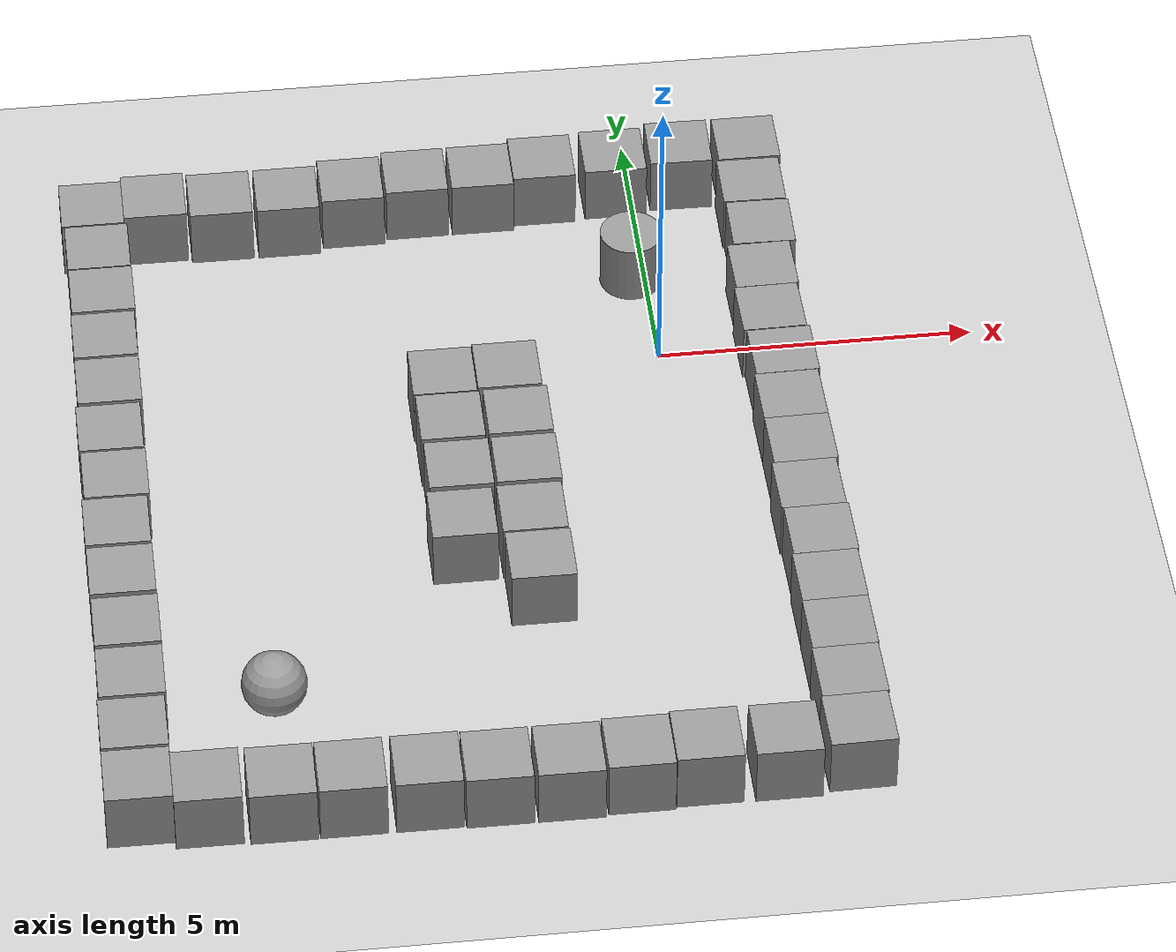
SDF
<sdf version="1.6">
 <world name="default">
  <light name="sun" type="directional">
   <pose>0 0 10 0 -0 0</pose>
   <diffuse>0.8 0.8 0.8 1</diffuse>
   <specular>0.2 0.2 0.2 1</specular>
   <attenuation>
    <range>1000</range>
    <constant>0.9</constant>
    <linear>0.01</linear>
    <quadratic>0.001</quadratic>
   </attenuation>
   <direction>-0.5 0.1 -0.9</direction>
  </light>
  <model name="ground_plane">
   <static>1</static>
   <link name="link">
    <collision name="collision">
     <geometry><plane><normal>0 0 1</normal><size>100 100</size></plane></geometry>
     <surface>
      <contact><collide_bitmask>65535</collide_bitmask></contact>
      <friction><ode><mu>100</mu><mu2>50</mu2></ode></friction>
     </surface>
    </collision>
    <visual name="visual">
     <cast_shadows>0</cast_shadows>
     <geometry><plane><normal>0 0 1</normal><size>100 100</size></plane></geometry>
     <material>
      <script><uri>file://media/materials/scripts/gazebo.material</uri><name>Gazebo/Grey</name></script>
     </material>
    </visual>
   </link>
  </model>
  <gravity>0 0 -9.8</gravity>
  <magnetic_field>6e-06 2.3e-05 -4.2e-05</magnetic_field>
  <atmosphere type="adiabatic"/>
  <physics name="default_physics" default="0" type="ode">
   <max_step_size>0.001</max_step_size>
   <real_time_factor>1</real_time_factor>
   <real_time_update_rate>1000</real_time_update_rate>
  </physics>
  <scene><ambient>0.4 0.4 0.4 1</ambient><background>0.7 0.7 0.7 1</background><shadows>1</shadows></scene>
  <audio><device>default</device></audio>
  <spherical_coordinates>
   <surface_model>EARTH_WGS84</surface_model>
   <latitude_deg>0</latitude_deg>
   <longitude_deg>0</longitude_deg>
   <elevation>0</elevation>
   <heading_deg>0</heading_deg>
  </spherical_coordinates>
  <model name="unit_box">
   <pose>-8.73209 0.394664 0.499995 0 -1e-05 -0.00012</pose>
   <link name="link">
    <inertial>
     <mass>1</mass>
     <inertia>
      <ixx>0.166667</ixx>
      <ixy>0</ixy>
      <ixz>0</ixz>
      <iyy>0.166667</iyy>
      <iyz>0</iyz>
      <izz>0.166667</izz>
     </inertia>
    </inertial>
    <collision name="collision"><geometry><box><size>1 1 1</size></box></geometry></collision>
    <visual name="visual">
     <geometry><box><size>1 1 1</size></box></geometry>
     <material>
      <script><name>Gazebo/Grey</name><uri>file://media/materials/scripts/gazebo.material</uri></script>
     </material>
    </visual>
   </link>
  </model>
  <model name="unit_box_0">
   <pose>-8.71122 1.44465 0.499995 1e-05 -0 0.000655</pose>
   <link name="link">
    <inertial>
     <mass>1</mass>
     <inertia>
      <ixx>0.166667</ixx>
      <ixy>0</ixy>
      <ixz>0</ixz>
      <iyy>0.166667</iyy>
      <iyz>0</iyz>
      <izz>0.166667</izz>
     </inertia>
    </inertial>
    <collision name="collision"><geometry><box><size>1 1 1</size></box></geometry></collision>
    <visual name="visual">
     <geometry><box><size>1 1 1</size></box></geometry>
     <material>
      <script><name>Gazebo/Grey</name><uri>file://media/materials/scripts/gazebo.material</uri></script>
     </material>
    </visual>
   </link>
  </model>
  <model name="unit_box_1">
   <pose>-8.73524 -0.65064 0.499995 0 1e-05 0</pose>
   <link name="link">
    <inertial>
     <mass>1</mass>
     <inertia>
      <ixx>0.166667</ixx>
      <ixy>0</ixy>
      <ixz>0</ixz>
      <iyy>0.166667</iyy>
      <iyz>0</iyz>
      <izz>0.166667</izz>
     </inertia>
    </inertial>
    <collision name="collision"><geometry><box><size>1 1 1</size></box></geometry></collision>
    <visual name="visual">
     <geometry><box><size>1 1 1</size></box></geometry>
     <material>
      <script><name>Gazebo/Grey</name><uri>file://media/materials/scripts/gazebo.material</uri></script>
     </material>
    </visual>
   </link>
  </model>
  <model name="unit_box_2">
   <pose>-2.46572 -2.02959 0.499995 -1e-05 0 0</pose>
   <link name="link">
    <inertial>
     <mass>1</mass>
     <inertia>
      <ixx>0.166667</ixx>
      <ixy>0</ixy>
      <ixz>0</ixz>
      <iyy>0.166667</iyy>
      <iyz>0</iyz>
      <izz>0.166667</izz>
     </inertia>
    </inertial>
    <collision name="collision"><geometry><box><size>1 1 1</size></box></geometry></collision>
    <visual name="visual">
     <geometry><box><size>1 1 1</size></box></geometry>
     <material>
      <script><name>Gazebo/Grey</name><uri>file://media/materials/scripts/gazebo.material</uri></script>
     </material>
    </visual>
   </link>
  </model>
  <model name="unit_box_3">
   <pose>-3.52074 -2.0453 0.499995 0 1e-05 0</pose>
   <link name="link">
    <inertial>
     <mass>1</mass>
     <inertia>
      <ixx>0.166667</ixx>
      <ixy>0</ixy>
      <ixz>0</ixz>
      <iyy>0.166667</iyy>
      <iyz>0</iyz>
      <izz>0.166667</izz>
     </inertia>
    </inertial>
    <collision name="collision"><geometry><box><size>1 1 1</size></box></geometry></collision>
    <visual name="visual">
     <geometry><box><size>1 1 1</size></box></geometry>
     <material>
      <script><name>Gazebo/Grey</name><uri>file://media/materials/scripts/gazebo.material</uri></script>
     </material>
    </visual>
   </link>
  </model>
  <model name="unit_box_4">
   <pose>-2.45367 -3.10243 0.499995 -1e-05 0 0</pose>
   <link name="link">
    <inertial>
     <mass>1</mass>
     <inertia>
      <ixx>0.166667</ixx>
      <ixy>0</ixy>
      <ixz>0</ixz>
      <iyy>0.166667</iyy>
      <iyz>0</iyz>
      <izz>0.166667</izz>
     </inertia>
    </inertial>
    <collision name="collision"><geometry><box><size>1 1 1</size></box></geometry></collision>
    <visual name="visual">
     <geometry><box><size>1 1 1</size></box></geometry>
     <material>
      <script><name>Gazebo/Grey</name><uri>file://media/materials/scripts/gazebo.material</uri></script>
     </material>
    </visual>
   </link>
  </model>
  <model name="unit_box_5">
   <pose>-8.77672 -1.71333 0.499995 -1e-05 0 0</pose>
   <link name="link">
    <inertial>
     <mass>1</mass>
     <inertia>
      <ixx>0.166667</ixx>
      <ixy>0</ixy>
      <ixz>0</ixz>
      <iyy>0.166667</iyy>
      <iyz>0</iyz>
      <izz>0.166667</izz>
     </inertia>
    </inertial>
    <collision name="collision"><geometry><box><size>1 1 1</size></box></geometry></collision>
    <visual name="visual">
     <geometry><box><size>1 1 1</size></box></geometry>
     <material>
      <script><name>Gazebo/Grey</name><uri>file://media/materials/scripts/gazebo.material</uri></script>
     </material>
    </visual>
   </link>
  </model>
  <model name="unit_box_6">
   <pose>-3.55502 -4.19778 0.499995 -1e-05 -0 -0</pose>
   <link name="link">
    <inertial>
     <mass>1</mass>
     <inertia>
      <ixx>0.166667</ixx>
      <ixy>0</ixy>
      <ixz>0</ixz>
      <iyy>0.166667</iyy>
      <iyz>0</iyz>
      <izz>0.166667</izz>
     </inertia>
    </inertial>
    <collision name="collision"><geometry><box><size>1 1 1</size></box></geometry></collision>
    <visual name="visual">
     <geometry><box><size>1 1 1</size></box></geometry>
     <material>
      <script><name>Gazebo/Grey</name><uri>file://media/materials/scripts/gazebo.material</uri></script>
     </material>
    </visual>
   </link>
  </model>
  <model name="unit_box_8">
   <pose>-2.46188 -5.20752 0.499995 1e-05 -0 0</pose>
   <link name="link">
    <inertial>
     <mass>1</mass>
     <inertia>
      <ixx>0.166667</ixx>
      <ixy>0</ixy>
      <ixz>0</ixz>
      <iyy>0.166667</iyy>
      <iyz>0</iyz>
      <izz>0.166667</izz>
     </inertia>
    </inertial>
    <collision name="collision"><geometry><box><size>1 1 1</size></box></geometry></collision>
    <visual name="visual">
     <geometry><box><size>1 1 1</size></box></geometry>
     <material>
      <script><name>Gazebo/Grey</name><uri>file://media/materials/scripts/gazebo.material</uri></script>
     </material>
    </visual>
   </link>
  </model>
  <model name="unit_box_9">
   <pose>-2.47968 -4.1786 0.499995 0 -1e-05 0</pose>
   <link name="link">
    <inertial>
     <mass>1</mass>
     <inertia>
      <ixx>0.166667</ixx>
      <ixy>0</ixy>
      <ixz>0</ixz>
      <iyy>0.166667</iyy>
      <iyz>0</iyz>
      <izz>0.166667</izz>
     </inertia>
    </inertial>
    <collision name="collision"><geometry><box><size>1 1 1</size></box></geometry></collision>
    <visual name="visual">
     <geometry><box><size>1 1 1</size></box></geometry>
     <material>
      <script><name>Gazebo/Grey</name><uri>file://media/materials/scripts/gazebo.material</uri></script>
     </material>
    </visual>
   </link>
  </model>
  <model name="unit_box_10">
   <pose>-3.49853 -3.11328 0.499995 0 -1e-05 0</pose>
   <link name="link">
    <inertial>
     <mass>1</mass>
     <inertia>
      <ixx>0.166667</ixx>
      <ixy>0</ixy>
      <ixz>0</ixz>
      <iyy>0.166667</iyy>
      <iyz>0</iyz>
      <izz>0.166667</izz>
     </inertia>
    </inertial>
    <collision name="collision"><geometry><box><size>1 1 1</size></box></geometry></collision>
    <visual name="visual">
     <geometry><box><size>1 1 1</size></box></geometry>
     <material>
      <script><name>Gazebo/Grey</name><uri>file://media/materials/scripts/gazebo.material</uri></script>
     </material>
    </visual>
   </link>
  </model>
  <model name="unit_box_13">
   <pose>-8.75933 -2.74937 0.499995 0 -1e-05 0</pose>
   <link name="link">
    <inertial>
     <mass>1</mass>
     <inertia>
      <ixx>0.166667</ixx>
      <ixy>0</ixy>
      <ixz>0</ixz>
      <iyy>0.166667</iyy>
      <iyz>0</iyz>
      <izz>0.166667</izz>
     </inertia>
    </inertial>
    <collision name="collision"><geometry><box><size>1 1 1</size></box></geometry></collision>
    <visual name="visual">
     <geometry><box><size>1 1 1</size></box></geometry>
     <material>
      <script><name>Gazebo/Grey</name><uri>file://media/materials/scripts/gazebo.material</uri></script>
     </material>
    </visual>
   </link>
  </model>
  <model name="unit_box_14">
   <pose>-8.79846 -3.78615 0.499995 1e-05 -0 0</pose>
   <link name="link">
    <inertial>
     <mass>1</mass>
     <inertia>
      <ixx>0.166667</ixx>
      <ixy>0</ixy>
      <ixz>0</ixz>
      <iyy>0.166667</iyy>
      <iyz>0</iyz>
      <izz>0.166667</izz>
     </inertia>
    </inertial>
    <collision name="collision"><geometry><box><size>1 1 1</size></box></geometry></collision>
    <visual name="visual">
     <geometry><box><size>1 1 1</size></box></geometry>
     <material>
      <script><name>Gazebo/Grey</name><uri>file://media/materials/scripts/gazebo.material</uri></script>
     </material>
    </visual>
   </link>
  </model>
  <model name="unit_box_15">
   <pose>-8.79377 -4.83924 0.499995 0 1e-05 0</pose>
   <link name="link">
    <inertial>
     <mass>1</mass>
     <inertia>
      <ixx>0.166667</ixx>
      <ixy>0</ixy>
      <ixz>0</ixz>
      <iyy>0.166667</iyy>
      <iyz>0</iyz>
      <izz>0.166667</izz>
     </inertia>
    </inertial>
    <collision name="collision"><geometry><box><size>1 1 1</size></box></geometry></collision>
    <visual name="visual">
     <geometry><box><size>1 1 1</size></box></geometry>
     <material>
      <script><name>Gazebo/Grey</name><uri>file://media/materials/scripts/gazebo.material</uri></script>
     </material>
    </visual>
   </link>
  </model>
  <model name="unit_box_16">
   <pose>-8.78593 -5.91969 0.499995 1e-05 -0 0</pose>
   <link name="link">
    <inertial>
     <mass>1</mass>
     <inertia>
      <ixx>0.166667</ixx>
      <ixy>0</ixy>
      <ixz>0</ixz>
      <iyy>0.166667</iyy>
      <iyz>0</iyz>
      <izz>0.166667</izz>
     </inertia>
    </inertial>
    <collision name="collision"><geometry><box><size>1 1 1</size></box></geometry></collision>
    <visual name="visual">
     <geometry><box><size>1 1 1</size></box></geometry>
     <material>
      <script><name>Gazebo/Grey</name><uri>file://media/materials/scripts/gazebo.material</uri></script>
     </material>
    </visual>
   </link>
  </model>
  <model name="unit_box_17">
   <pose>-8.79104 -6.9817 0.499995 0 1e-05 0</pose>
   <link name="link">
    <inertial>
     <mass>1</mass>
     <inertia>
      <ixx>0.166667</ixx>
      <ixy>0</ixy>
      <ixz>0</ixz>
      <iyy>0.166667</iyy>
      <iyz>0</iyz>
      <izz>0.166667</izz>
     </inertia>
    </inertial>
    <collision name="collision"><geometry><box><size>1 1 1</size></box></geometry></collision>
    <visual name="visual">
     <geometry><box><size>1 1 1</size></box></geometry>
     <material>
      <script><name>Gazebo/Grey</name><uri>file://media/materials/scripts/gazebo.material</uri></script>
     </material>
    </visual>
   </link>
  </model>
  <model name="unit_box_18">
   <pose>-8.81823 -8.03718 0.499995 1e-05 -0 0</pose>
   <link name="link">
    <inertial>
     <mass>1</mass>
     <inertia>
      <ixx>0.166667</ixx>
      <ixy>0</ixy>
      <ixz>0</ixz>
      <iyy>0.166667</iyy>
      <iyz>0</iyz>
      <izz>0.166667</izz>
     </inertia>
    </inertial>
    <collision name="collision"><geometry><box><size>1 1 1</size></box></geometry></collision>
    <visual name="visual">
     <geometry><box><size>1 1 1</size></box></geometry>
     <material>
      <script><name>Gazebo/Grey</name><uri>file://media/materials/scripts/gazebo.material</uri></script>
     </material>
    </visual>
   </link>
  </model>
  <model name="unit_box_19">
   <pose>-8.82789 -9.08499 0.499995 0 -1e-05 -0.003825</pose>
   <link name="link">
    <inertial>
     <mass>1</mass>
     <inertia>
      <ixx>0.166667</ixx>
      <ixy>0</ixy>
      <ixz>0</ixz>
      <iyy>0.166667</iyy>
      <iyz>0</iyz>
      <izz>0.166667</izz>
     </inertia>
    </inertial>
    <collision name="collision"><geometry><box><size>1 1 1</size></box></geometry></collision>
    <visual name="visual">
     <geometry><box><size>1 1 1</size></box></geometry>
     <material>
      <script><name>Gazebo/Grey</name><uri>file://media/materials/scripts/gazebo.material</uri></script>
     </material>
    </visual>
   </link>
  </model>
  <model name="unit_box_20">
   <pose>-7.82836 -9.21753 0.5 0 0 -0.003821</pose>
   <link name="link">
    <inertial>
     <mass>1</mass>
     <inertia>
      <ixx>0.166667</ixx>
      <ixy>0</ixy>
      <ixz>0</ixz>
      <iyy>0.166667</iyy>
      <iyz>0</iyz>
      <izz>0.166667</izz>
     </inertia>
    </inertial>
    <collision name="collision"><geometry><box><size>1 1 1</size></box></geometry></collision>
    <visual name="visual">
     <geometry><box><size>1 1 1</size></box></geometry>
     <material>
      <script><name>Gazebo/Grey</name><uri>file://media/materials/scripts/gazebo.material</uri></script>
     </material>
    </visual>
   </link>
  </model>
  <model name="unit_box_21">
   <pose>-6.73771 -9.24957 0.499995 -1e-05 -0 -0.002543</pose>
   <link name="link">
    <inertial>
     <mass>1</mass>
     <inertia>
      <ixx>0.166667</ixx>
      <ixy>0</ixy>
      <ixz>0</ixz>
      <iyy>0.166667</iyy>
      <iyz>0</iyz>
      <izz>0.166667</izz>
     </inertia>
    </inertial>
    <collision name="collision"><geometry><box><size>1 1 1</size></box></geometry></collision>
    <visual name="visual">
     <geometry><box><size>1 1 1</size></box></geometry>
     <material>
      <script><name>Gazebo/Grey</name><uri>file://media/materials/scripts/gazebo.material</uri></script>
     </material>
    </visual>
   </link>
  </model>
  <model name="unit_box_22">
   <pose>-5.71278 -9.24776 0.499995 -1e-05 -0 -0.002547</pose>
   <link name="link">
    <inertial>
     <mass>1</mass>
     <inertia>
      <ixx>0.166667</ixx>
      <ixy>0</ixy>
      <ixz>0</ixz>
      <iyy>0.166667</iyy>
      <iyz>0</iyz>
      <izz>0.166667</izz>
     </inertia>
    </inertial>
    <collision name="collision"><geometry><box><size>1 1 1</size></box></geometry></collision>
    <visual name="visual">
     <geometry><box><size>1 1 1</size></box></geometry>
     <material>
      <script><name>Gazebo/Grey</name><uri>file://media/materials/scripts/gazebo.material</uri></script>
     </material>
    </visual>
   </link>
  </model>
  <model name="unit_box_23">
   <pose>-4.59275 -9.25097 0.5 0 -0 -0.00204</pose>
   <link name="link">
    <inertial>
     <mass>1</mass>
     <inertia>
      <ixx>0.166667</ixx>
      <ixy>0</ixy>
      <ixz>0</ixz>
      <iyy>0.166667</iyy>
      <iyz>0</iyz>
      <izz>0.166667</izz>
     </inertia>
    </inertial>
    <collision name="collision"><geometry><box><size>1 1 1</size></box></geometry></collision>
    <visual name="visual">
     <geometry><box><size>1 1 1</size></box></geometry>
     <material>
      <script><name>Gazebo/Grey</name><uri>file://media/materials/scripts/gazebo.material</uri></script>
     </material>
    </visual>
   </link>
  </model>
  <model name="unit_box_24">
   <pose>-3.56355 -9.27809 0.499995 -1e-05 -0 -0.002492</pose>
   <link name="link">
    <inertial>
     <mass>1</mass>
     <inertia>
      <ixx>0.166667</ixx>
      <ixy>0</ixy>
      <ixz>0</ixz>
      <iyy>0.166667</iyy>
      <iyz>0</iyz>
      <izz>0.166667</izz>
     </inertia>
    </inertial>
    <collision name="collision"><geometry><box><size>1 1 1</size></box></geometry></collision>
    <visual name="visual">
     <geometry><box><size>1 1 1</size></box></geometry>
     <material>
      <script><name>Gazebo/Grey</name><uri>file://media/materials/scripts/gazebo.material</uri></script>
     </material>
    </visual>
   </link>
  </model>
  <model name="unit_box_25">
   <pose>-2.50046 -9.282 0.499995 1e-05 0 -0.004563</pose>
   <link name="link">
    <inertial>
     <mass>1</mass>
     <inertia>
      <ixx>0.166667</ixx>
      <ixy>0</ixy>
      <ixz>0</ixz>
      <iyy>0.166667</iyy>
      <iyz>0</iyz>
      <izz>0.166667</izz>
     </inertia>
    </inertial>
    <collision name="collision"><geometry><box><size>1 1 1</size></box></geometry></collision>
    <visual name="visual">
     <geometry><box><size>1 1 1</size></box></geometry>
     <material>
      <script><name>Gazebo/Grey</name><uri>file://media/materials/scripts/gazebo.material</uri></script>
     </material>
    </visual>
   </link>
  </model>
  <model name="unit_box_26">
   <pose>-1.46415 -9.24413 0.5 0 -0 -0.000116</pose>
   <link name="link">
    <inertial>
     <mass>1</mass>
     <inertia>
      <ixx>0.166667</ixx>
      <ixy>0</ixy>
      <ixz>0</ixz>
      <iyy>0.166667</iyy>
      <iyz>0</iyz>
      <izz>0.166667</izz>
     </inertia>
    </inertial>
    <collision name="collision"><geometry><box><size>1 1 1</size></box></geometry></collision>
    <visual name="visual">
     <geometry><box><size>1 1 1</size></box></geometry>
     <material>
      <script><name>Gazebo/Grey</name><uri>file://media/materials/scripts/gazebo.material</uri></script>
     </material>
    </visual>
   </link>
  </model>
  <model name="unit_box_27">
   <pose>-0.450507 -9.20253 0.499995 -0 -1e-05 -0.000115</pose>
   <link name="link">
    <inertial>
     <mass>1</mass>
     <inertia>
      <ixx>0.166667</ixx>
      <ixy>0</ixy>
      <ixz>0</ixz>
      <iyy>0.166667</iyy>
      <iyz>0</iyz>
      <izz>0.166667</izz>
     </inertia>
    </inertial>
    <collision name="collision"><geometry><box><size>1 1 1</size></box></geometry></collision>
    <visual name="visual">
     <geometry><box><size>1 1 1</size></box></geometry>
     <material>
      <script><name>Gazebo/Grey</name><uri>file://media/materials/scripts/gazebo.material</uri></script>
     </material>
    </visual>
   </link>
  </model>
  <model name="unit_box_28">
   <pose>0.723185 -9.21205 0.499995 0 -1e-05 0</pose>
   <link name="link">
    <inertial>
     <mass>1</mass>
     <inertia>
      <ixx>0.166667</ixx>
      <ixy>0</ixy>
      <ixz>0</ixz>
      <iyy>0.166667</iyy>
      <iyz>0</iyz>
      <izz>0.166667</izz>
     </inertia>
    </inertial>
    <collision name="collision"><geometry><box><size>1 1 1</size></box></geometry></collision>
    <visual name="visual">
     <geometry><box><size>1 1 1</size></box></geometry>
     <material>
      <script><name>Gazebo/Grey</name><uri>file://media/materials/scripts/gazebo.material</uri></script>
     </material>
    </visual>
   </link>
  </model>
  <model name="unit_box_29">
   <pose>1.82979 -8.1352 0.5 0 -0 0.015737</pose>
   <link name="link">
    <inertial>
     <mass>1</mass>
     <inertia>
      <ixx>0.166667</ixx>
      <ixy>0</ixy>
      <ixz>0</ixz>
      <iyy>0.166667</iyy>
      <iyz>0</iyz>
      <izz>0.166667</izz>
     </inertia>
    </inertial>
    <collision name="collision"><geometry><box><size>1 1 1</size></box></geometry></collision>
    <visual name="visual">
     <geometry><box><size>1 1 1</size></box></geometry>
     <material>
      <script><name>Gazebo/Grey</name><uri>file://media/materials/scripts/gazebo.material</uri></script>
     </material>
    </visual>
   </link>
  </model>
  <model name="unit_box_30">
   <pose>1.82691 -7.1351 0.499995 -0 -1e-05 0.015739</pose>
   <link name="link">
    <inertial>
     <mass>1</mass>
     <inertia>
      <ixx>0.166667</ixx>
      <ixy>0</ixy>
      <ixz>0</ixz>
      <iyy>0.166667</iyy>
      <iyz>0</iyz>
      <izz>0.166667</izz>
     </inertia>
    </inertial>
    <collision name="collision"><geometry><box><size>1 1 1</size></box></geometry></collision>
    <visual name="visual">
     <geometry><box><size>1 1 1</size></box></geometry>
     <material>
      <script><name>Gazebo/Grey</name><uri>file://media/materials/scripts/gazebo.material</uri></script>
     </material>
    </visual>
   </link>
  </model>
  <model name="unit_box_31">
   <pose>1.81717 -6.13506 0.499995 0 -1e-05 0.015599</pose>
   <link name="link">
    <inertial>
     <mass>1</mass>
     <inertia>
      <ixx>0.166667</ixx>
      <ixy>0</ixy>
      <ixz>0</ixz>
      <iyy>0.166667</iyy>
      <iyz>0</iyz>
      <izz>0.166667</izz>
     </inertia>
    </inertial>
    <collision name="collision"><geometry><box><size>1 1 1</size></box></geometry></collision>
    <visual name="visual">
     <geometry><box><size>1 1 1</size></box></geometry>
     <material>
      <script><name>Gazebo/Grey</name><uri>file://media/materials/scripts/gazebo.material</uri></script>
     </material>
    </visual>
   </link>
  </model>
  <model name="unit_box_32">
   <pose>1.82544 -5.13368 0.499995 -0 1e-05 0.015763</pose>
   <link name="link">
    <inertial>
     <mass>1</mass>
     <inertia>
      <ixx>0.166667</ixx>
      <ixy>0</ixy>
      <ixz>0</ixz>
      <iyy>0.166667</iyy>
      <iyz>0</iyz>
      <izz>0.166667</izz>
     </inertia>
    </inertial>
    <collision name="collision"><geometry><box><size>1 1 1</size></box></geometry></collision>
    <visual name="visual">
     <geometry><box><size>1 1 1</size></box></geometry>
     <material>
      <script><name>Gazebo/Grey</name><uri>file://media/materials/scripts/gazebo.material</uri></script>
     </material>
    </visual>
   </link>
  </model>
  <model name="unit_box_33">
   <pose>1.78235 -4.13423 0.499995 0 1e-05 0.015762</pose>
   <link name="link">
    <inertial>
     <mass>1</mass>
     <inertia>
      <ixx>0.166667</ixx>
      <ixy>0</ixy>
      <ixz>0</ixz>
      <iyy>0.166667</iyy>
      <iyz>0</iyz>
      <izz>0.166667</izz>
     </inertia>
    </inertial>
    <collision name="collision"><geometry><box><size>1 1 1</size></box></geometry></collision>
    <visual name="visual">
     <geometry><box><size>1 1 1</size></box></geometry>
     <material>
      <script><name>Gazebo/Grey</name><uri>file://media/materials/scripts/gazebo.material</uri></script>
     </material>
    </visual>
   </link>
  </model>
  <model name="unit_box_35">
   <pose>1.78875 -2.13373 0.499995 0 1e-05 0.015829</pose>
   <link name="link">
    <inertial>
     <mass>1</mass>
     <inertia>
      <ixx>0.166667</ixx>
      <ixy>0</ixy>
      <ixz>0</ixz>
      <iyy>0.166667</iyy>
      <iyz>0</iyz>
      <izz>0.166667</izz>
     </inertia>
    </inertial>
    <collision name="collision"><geometry><box><size>1 1 1</size></box></geometry></collision>
    <visual name="visual">
     <geometry><box><size>1 1 1</size></box></geometry>
     <material>
      <script><name>Gazebo/Grey</name><uri>file://media/materials/scripts/gazebo.material</uri></script>
     </material>
    </visual>
   </link>
  </model>
  <model name="unit_box_37">
   <pose>1.75969 0.885163 0.499995 0 1e-05 0.012187</pose>
   <link name="link">
    <inertial>
     <mass>1</mass>
     <inertia>
      <ixx>0.166667</ixx>
      <ixy>0</ixy>
      <ixz>0</ixz>
      <iyy>0.166667</iyy>
      <iyz>0</iyz>
      <izz>0.166667</izz>
     </inertia>
    </inertial>
    <collision name="collision"><geometry><box><size>1 1 1</size></box></geometry></collision>
    <visual name="visual">
     <geometry><box><size>1 1 1</size></box></geometry>
     <material>
      <script><name>Gazebo/Grey</name><uri>file://media/materials/scripts/gazebo.material</uri></script>
     </material>
    </visual>
   </link>
  </model>
  <model name="unit_box_38">
   <pose>-2.46769 3.72734 0.499995 0 1e-05 1.2e-05</pose>
   <link name="link">
    <inertial>
     <mass>1</mass>
     <inertia>
      <ixx>0.166667</ixx>
      <ixy>0</ixy>
      <ixz>0</ixz>
      <iyy>0.166667</iyy>
      <iyz>0</iyz>
      <izz>0.166667</izz>
     </inertia>
    </inertial>
    <collision name="collision"><geometry><box><size>1 1 1</size></box></geometry></collision>
    <visual name="visual">
     <geometry><box><size>1 1 1</size></box></geometry>
     <material>
      <script><name>Gazebo/Grey</name><uri>file://media/materials/scripts/gazebo.material</uri></script>
     </material>
    </visual>
   </link>
  </model>
  <model name="unit_box_39">
   <pose>-1.45622 3.83111 0.499995 0 -1e-05 0</pose>
   <link name="link">
    <inertial>
     <mass>1</mass>
     <inertia>
      <ixx>0.166667</ixx>
      <ixy>0</ixy>
      <ixz>0</ixz>
      <iyy>0.166667</iyy>
      <iyz>0</iyz>
      <izz>0.166667</izz>
     </inertia>
    </inertial>
    <collision name="collision"><geometry><box><size>1 1 1</size></box></geometry></collision>
    <visual name="visual">
     <geometry><box><size>1 1 1</size></box></geometry>
     <material>
      <script><name>Gazebo/Grey</name><uri>file://media/materials/scripts/gazebo.material</uri></script>
     </material>
    </visual>
   </link>
  </model>
  <model name="unit_box_40">
   <pose>-0.290693 3.86972 0.499995 0 -1e-05 0</pose>
   <link name="link">
    <inertial>
     <mass>1</mass>
     <inertia>
      <ixx>0.166667</ixx>
      <ixy>0</ixy>
      <ixz>0</ixz>
      <iyy>0.166667</iyy>
      <iyz>0</iyz>
      <izz>0.166667</izz>
     </inertia>
    </inertial>
    <collision name="collision"><geometry><box><size>1 1 1</size></box></geometry></collision>
    <visual name="visual">
     <geometry><box><size>1 1 1</size></box></geometry>
     <material>
      <script><name>Gazebo/Grey</name><uri>file://media/materials/scripts/gazebo.material</uri></script>
     </material>
    </visual>
   </link>
  </model>
  <model name="unit_box_42">
   <pose>0.792054 3.95614 0.499995 0 1e-05 -0.012034</pose>
   <link name="link">
    <inertial>
     <mass>1</mass>
     <inertia>
      <ixx>0.166667</ixx>
      <ixy>0</ixy>
      <ixz>0</ixz>
      <iyy>0.166667</iyy>
      <iyz>0</iyz>
      <izz>0.166667</izz>
     </inertia>
    </inertial>
    <collision name="collision"><geometry><box><size>1 1 1</size></box></geometry></collision>
    <visual name="visual">
     <geometry><box><size>1 1 1</size></box></geometry>
     <material>
      <script><name>Gazebo/Grey</name><uri>file://media/materials/scripts/gazebo.material</uri></script>
     </material>
    </visual>
   </link>
  </model>
  <model name="unit_box_43">
   <pose>1.8457 2.91401 0.499995 0 -1e-05 -0.00716</pose>
   <link name="link">
    <inertial>
     <mass>1</mass>
     <inertia>
      <ixx>0.166667</ixx>
      <ixy>0</ixy>
      <ixz>0</ixz>
      <iyy>0.166667</iyy>
      <iyz>0</iyz>
      <izz>0.166667</izz>
     </inertia>
    </inertial>
    <collision name="collision"><geometry><box><size>1 1 1</size></box></geometry></collision>
    <visual name="visual">
     <geometry><box><size>1 1 1</size></box></geometry>
     <material>
      <script><name>Gazebo/Grey</name><uri>file://media/materials/scripts/gazebo.material</uri></script>
     </material>
    </visual>
   </link>
  </model>
  <model name="unit_box_44">
   <pose>1.86376 1.89549 0.499995 -0 -1e-05 -0.010845</pose>
   <link name="link">
    <inertial>
     <mass>1</mass>
     <inertia>
      <ixx>0.166667</ixx>
      <ixy>0</ixy>
      <ixz>0</ixz>
      <iyy>0.166667</iyy>
      <iyz>0</iyz>
      <izz>0.166667</izz>
     </inertia>
    </inertial>
    <collision name="collision"><geometry><box><size>1 1 1</size></box></geometry></collision>
    <visual name="visual">
     <geometry><box><size>1 1 1</size></box></geometry>
     <material>
      <script><name>Gazebo/Grey</name><uri>file://media/materials/scripts/gazebo.material</uri></script>
     </material>
    </visual>
   </link>
  </model>
  <model name="unit_box_45">
   <pose>-3.5308 3.72448 0.499995 -0 -1e-05 0.002629</pose>
   <link name="link">
    <inertial>
     <mass>1</mass>
     <inertia>
      <ixx>0.166667</ixx>
      <ixy>0</ixy>
      <ixz>0</ixz>
      <iyy>0.166667</iyy>
      <iyz>0</iyz>
      <izz>0.166667</izz>
     </inertia>
    </inertial>
    <collision name="collision"><geometry><box><size>1 1 1</size></box></geometry></collision>
    <visual name="visual">
     <geometry><box><size>1 1 1</size></box></geometry>
     <material>
      <script><name>Gazebo/Grey</name><uri>file://media/materials/scripts/gazebo.material</uri></script>
     </material>
    </visual>
   </link>
  </model>
  <model name="unit_box_46">
   <pose>-4.57517 3.63075 0.499995 -0 -1e-05 0.00262</pose>
   <link name="link">
    <inertial>
     <mass>1</mass>
     <inertia>
      <ixx>0.166667</ixx>
      <ixy>0</ixy>
      <ixz>0</ixz>
      <iyy>0.166667</iyy>
      <iyz>0</iyz>
      <izz>0.166667</izz>
     </inertia>
    </inertial>
    <collision name="collision"><geometry><box><size>1 1 1</size></box></geometry></collision>
    <visual name="visual">
     <geometry><box><size>1 1 1</size></box></geometry>
     <material>
      <script><name>Gazebo/Grey</name><uri>file://media/materials/scripts/gazebo.material</uri></script>
     </material>
    </visual>
   </link>
  </model>
  <model name="unit_box_47">
   <pose>-5.62421 3.51574 0.499995 0 1e-05 0</pose>
   <link name="link">
    <inertial>
     <mass>1</mass>
     <inertia>
      <ixx>0.166667</ixx>
      <ixy>0</ixy>
      <ixz>0</ixz>
      <iyy>0.166667</iyy>
      <iyz>0</iyz>
      <izz>0.166667</izz>
     </inertia>
    </inertial>
    <collision name="collision"><geometry><box><size>1 1 1</size></box></geometry></collision>
    <visual name="visual">
     <geometry><box><size>1 1 1</size></box></geometry>
     <material>
      <script><name>Gazebo/Grey</name><uri>file://media/materials/scripts/gazebo.material</uri></script>
     </material>
    </visual>
   </link>
  </model>
  <model name="unit_box_48">
   <pose>-6.70133 3.5177 0.499995 1e-05 -0 0</pose>
   <link name="link">
    <inertial>
     <mass>1</mass>
     <inertia>
      <ixx>0.166667</ixx>
      <ixy>0</ixy>
      <ixz>0</ixz>
      <iyy>0.166667</iyy>
      <iyz>0</iyz>
      <izz>0.166667</izz>
     </inertia>
    </inertial>
    <collision name="collision"><geometry><box><size>1 1 1</size></box></geometry></collision>
    <visual name="visual">
     <geometry><box><size>1 1 1</size></box></geometry>
     <material>
      <script><name>Gazebo/Grey</name><uri>file://media/materials/scripts/gazebo.material</uri></script>
     </material>
    </visual>
   </link>
  </model>
  <model name="unit_box_49">
   <pose>-7.75877 3.58604 0.499995 0 -1e-05 0.000446</pose>
   <link name="link">
    <inertial>
     <mass>1</mass>
     <inertia>
      <ixx>0.166667</ixx>
      <ixy>0</ixy>
      <ixz>0</ixz>
      <iyy>0.166667</iyy>
      <iyz>0</iyz>
      <izz>0.166667</izz>
     </inertia>
    </inertial>
    <collision name="collision"><geometry><box><size>1 1 1</size></box></geometry></collision>
    <visual name="visual">
     <geometry><box><size>1 1 1</size></box></geometry>
     <material>
      <script><name>Gazebo/Grey</name><uri>file://media/materials/scripts/gazebo.material</uri></script>
     </material>
    </visual>
   </link>
  </model>
  <model name="unit_box_50">
   <pose>-8.75873 3.48616 0.499995 0 1e-05 0.000432</pose>
   <link name="link">
    <inertial>
     <mass>1</mass>
     <inertia>
      <ixx>0.166667</ixx>
      <ixy>0</ixy>
      <ixz>0</ixz>
      <iyy>0.166667</iyy>
      <iyz>0</iyz>
      <izz>0.166667</izz>
     </inertia>
    </inertial>
    <collision name="collision"><geometry><box><size>1 1 1</size></box></geometry></collision>
    <visual name="visual">
     <geometry><box><size>1 1 1</size></box></geometry>
     <material>
      <script><name>Gazebo/Grey</name><uri>file://media/materials/scripts/gazebo.material</uri></script>
     </material>
    </visual>
   </link>
  </model>
  <model name="unit_box_51">
   <pose>-8.71676 2.46297 0.499995 0 1e-05 0.000652</pose>
   <link name="link">
    <inertial>
     <mass>1</mass>
     <inertia>
      <ixx>0.166667</ixx>
      <ixy>0</ixy>
      <ixz>0</ixz>
      <iyy>0.166667</iyy>
      <iyz>0</iyz>
      <izz>0.166667</izz>
     </inertia>
    </inertial>
    <collision name="collision"><geometry><box><size>1 1 1</size></box></geometry></collision>
    <visual name="visual">
     <geometry><box><size>1 1 1</size></box></geometry>
     <material>
      <script><name>Gazebo/Grey</name><uri>file://media/materials/scripts/gazebo.material</uri></script>
     </material>
    </visual>
   </link>
  </model>
  <light name="user_point_light_0" type="point">
   <pose>-6.14571 -6.63651 1 0 -0 0</pose>
   <diffuse>0.5 0.5 0.5 1</diffuse>
   <specular>0.1 0.1 0.1 1</specular>
   <attenuation>
    <range>20</range>
    <constant>0.5</constant>
    <linear>0.01</linear>
    <quadratic>0.001</quadratic>
   </attenuation>
   <cast_shadows>0</cast_shadows>
   <direction>0 0 -1</direction>
  </light>
  <light name="user_point_light_1" type="point">
   <pose>-6.11805 1.067 1 0 -0 0</pose>
   <diffuse>0.5 0.5 0.5 1</diffuse>
   <specular>0.1 0.1 0.1 1</specular>
   <attenuation>
    <range>20</range>
    <constant>0.5</constant>
    <linear>0.01</linear>
    <quadratic>0.001</quadratic>
   </attenuation>
   <cast_shadows>0</cast_shadows>
   <direction>0 0 -1</direction>
  </light>
  <light name="user_point_light_2" type="point">
   <pose>-0.573578 1.35587 1 0 -0 0</pose>
   <diffuse>0.5 0.5 0.5 1</diffuse>
   <specular>0.1 0.1 0.1 1</specular>
   <attenuation>
    <range>20</range>
    <constant>0.5</constant>
    <linear>0.01</linear>
    <quadratic>0.001</quadratic>
   </attenuation>
   <cast_shadows>0</cast_shadows>
   <direction>0 0 -1</direction>
  </light>
  <light name="user_point_light_3" type="point">
   <pose>-1.02944 -6.8098 1 0 -0 0</pose>
   <diffuse>0.5 0.5 0.5 1</diffuse>
   <specular>0.1 0.1 0.1 1</specular>
   <attenuation>
    <range>20</range>
    <constant>0.5</constant>
    <linear>0.01</linear>
    <quadratic>0.001</quadratic>
   </attenuation>
   <cast_shadows>0</cast_shadows>
   <direction>0 0 -1</direction>
  </light>
  <model name="unit_sphere">
   <pose>-6.66072 -7.00069 0.5 0 -0 0</pose>
   <link name="link">
    <inertial>
     <mass>1</mass>
     <inertia><ixx>0.1</ixx><ixy>0</ixy><ixz>0</ixz><iyy>0.1</iyy><iyz>0</iyz><izz>0.1</izz></inertia>
    </inertial>
    <collision name="collision"><geometry><sphere><radius>0.5</radius></sphere></geometry></collision>
    <visual name="visual">
     <geometry><sphere><radius>0.5</radius></sphere></geometry>
     <material>
      <script><name>Gazebo/Grey</name><uri>file://media/materials/scripts/gazebo.material</uri></script>
     </material>
    </visual>
   </link>
  </model>
  <model name="unit_cylinder">
   <pose>-0.22533 1.86282 0.499996 3e-06 1e-06 -0</pose>
   <link name="link">
    <inertial>
     <mass>1</mass>
     <inertia><ixx>0.145833</ixx><ixy>0</ixy><ixz>0</ixz><iyy>0.145833</iyy><iyz>0</iyz><izz>0.125</izz></inertia>
    </inertial>
    <collision name="collision">
     <geometry><cylinder><radius>0.5</radius><length>1</length></cylinder></geometry>
    </collision>
    <visual name="visual">
     <geometry><cylinder><radius>0.5</radius><length>1</length></cylinder></geometry>
     <material>
      <script><name>Gazebo/Grey</name><uri>file://media/materials/scripts/gazebo.material</uri></script>
     </material>
    </visual>
   </link>
  </model>
  <model name="unit_box_11">
   <pose>-3.54596 -1.02665 0.499995 0 -1e-05 0</pose>
   <link name="link">
    <inertial>
     <mass>1</mass>
     <inertia>
      <ixx>0.166667</ixx>
      <ixy>0</ixy>
      <ixz>0</ixz>
      <iyy>0.166667</iyy>
      <iyz>0</iyz>
      <izz>0.166667</izz>
     </inertia>
    </inertial>
    <collision name="collision"><geometry><box><size>1 1 1</size></box></geometry></collision>
    <visual name="visual">
     <geometry><box><size>1 1 1</size></box></geometry>
     <material>
      <script><name>Gazebo/Grey</name><uri>file://media/materials/scripts/gazebo.material</uri></script>
     </material>
    </visual>
   </link>
  </model>
  <model name="unit_box_12">
   <pose>-2.52881 -0.98464 0.499995 1e-05 -0 0</pose>
   <link name="link">
    <inertial>
     <mass>1</mass>
     <inertia>
      <ixx>0.166667</ixx>
      <ixy>0</ixy>
      <ixz>0</ixz>
      <iyy>0.166667</iyy>
      <iyz>0</iyz>
      <izz>0.166667</izz>
     </inertia>
    </inertial>
    <collision name="collision"><geometry><box><size>1 1 1</size></box></geometry></collision>
    <visual name="visual">
     <geometry><box><size>1 1 1</size></box></geometry>
     <material>
      <script><name>Gazebo/Grey</name><uri>file://media/materials/scripts/gazebo.material</uri></script>
     </material>
    </visual>
   </link>
  </model>
  <model name="unit_box_34">
   <pose>1.80462 -3.13374 0.499995 0 1e-05 0.015765</pose>
   <link name="link">
    <inertial>
     <mass>1</mass>
     <inertia>
      <ixx>0.166667</ixx>
      <ixy>0</ixy>
      <ixz>0</ixz>
      <iyy>0.166667</iyy>
      <iyz>0</iyz>
      <izz>0.166667</izz>
     </inertia>
    </inertial>
    <collision name="collision"><geometry><box><size>1 1 1</size></box></geometry></collision>
    <visual name="visual">
     <geometry><box><size>1 1 1</size></box></geometry>
     <material>
      <script><name>Gazebo/Grey</name><uri>file://media/materials/scripts/gazebo.material</uri></script>
     </material>
    </visual>
   </link>
  </model>
  <model name="unit_box_36">
   <pose>1.80273 -1.13072 0.499995 -1e-05 -0 0.018461</pose>
   <link name="link">
    <inertial>
     <mass>1</mass>
     <inertia>
      <ixx>0.166667</ixx>
      <ixy>0</ixy>
      <ixz>0</ixz>
      <iyy>0.166667</iyy>
      <iyz>0</iyz>
      <izz>0.166667</izz>
     </inertia>
    </inertial>
    <collision name="collision"><geometry><box><size>1 1 1</size></box></geometry></collision>
    <visual name="visual">
     <geometry><box><size>1 1 1</size></box></geometry>
     <material>
      <script><name>Gazebo/Grey</name><uri>file://media/materials/scripts/gazebo.material</uri></script>
     </material>
    </visual>
   </link>
  </model>
  <model name="unit_box_52">
   <pose>1.74258 -0.118028 0.499995 0 -1e-05 0.017177</pose>
   <link name="link">
    <inertial>
     <mass>1</mass>
     <inertia>
      <ixx>0.166667</ixx>
      <ixy>0</ixy>
      <ixz>0</ixz>
      <iyy>0.166667</iyy>
      <iyz>0</iyz>
      <izz>0.166667</izz>
     </inertia>
    </inertial>
    <collision name="collision"><geometry><box><size>1 1 1</size></box></geometry></collision>
    <visual name="visual">
     <geometry><box><size>1 1 1</size></box></geometry>
     <material>
      <script><name>Gazebo/Grey</name><uri>file://media/materials/scripts/gazebo.material</uri></script>
     </material>
    </visual>
   </link>
  </model>
  <model name="unit_box_41">
   <pose>1.8234 -9.13554 0.5 0 -0 0.015968</pose>
   <link name="link">
    <inertial>
     <mass>1</mass>
     <inertia>
      <ixx>0.166667</ixx>
      <ixy>0</ixy>
      <ixz>0</ixz>
      <iyy>0.166667</iyy>
      <iyz>0</iyz>
      <izz>0.166667</izz>
     </inertia>
    </inertial>
    <collision name="collision"><geometry><box><size>1 1 1</size></box></geometry></collision>
    <visual name="visual">
     <geometry><box><size>1 1 1</size></box></geometry>
     <material>
      <script><name>Gazebo/Grey</name><uri>file://media/materials/scripts/gazebo.material</uri></script>
     </material>
    </visual>
   </link>
  </model>
  <model name="unit_box_53">
   <pose>1.89369 3.9453 0.499995 0 1e-05 0</pose>
   <link name="link">
    <inertial>
     <mass>1</mass>
     <inertia>
      <ixx>0.166667</ixx>
      <ixy>0</ixy>
      <ixz>0</ixz>
      <iyy>0.166667</iyy>
      <iyz>0</iyz>
      <izz>0.166667</izz>
     </inertia>
    </inertial>
    <collision name="collision"><geometry><box><size>1 1 1</size></box></geometry></collision>
    <visual name="visual">
     <geometry><box><size>1 1 1</size></box></geometry>
     <material>
      <script><name>Gazebo/Grey</name><uri>file://media/materials/scripts/gazebo.material</uri></script>
     </material>
    </visual>
   </link>
  </model>
 </world>
</sdf>
